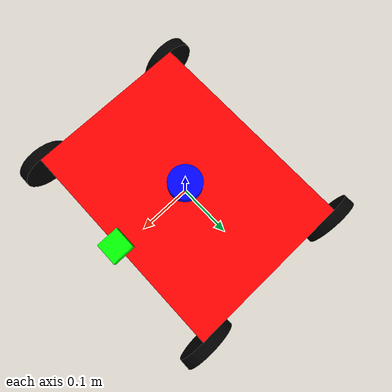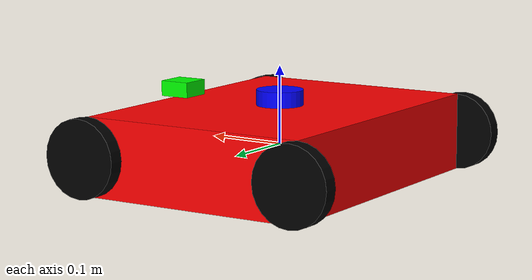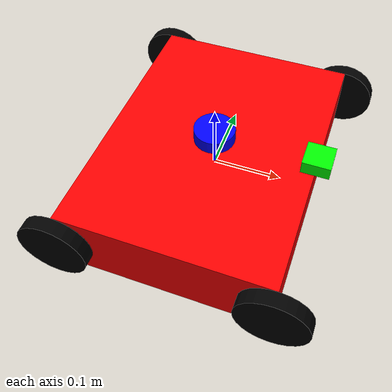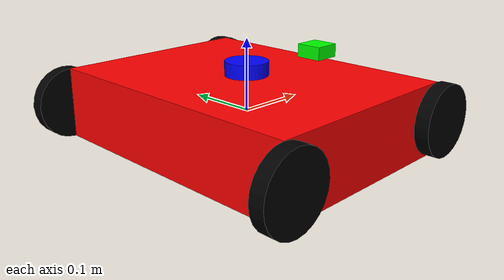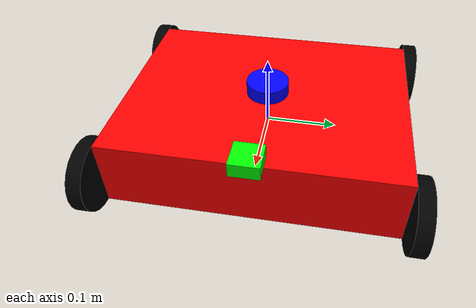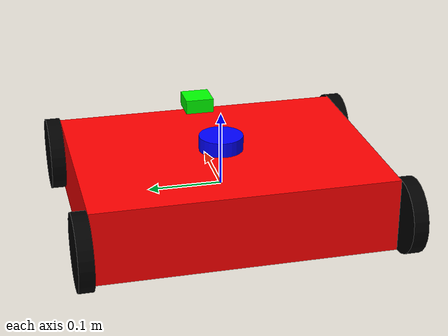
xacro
<?xml version="1.0"?>
<robot xmlns:xacro="http://ros.org/wiki/xacro" name="four_wheel_bot">
  <gazebo xmlns:gazebo="http://gazebosim.org/schema/gazebo"/>

  <!-- === Properties === -->
  <xacro:property name="wheel_radius" value="0.05"/>
  <xacro:property name="wheel_width" value="0.02"/>
  <xacro:property name="body_length" value="0.3"/>
  <xacro:property name="body_width" value="0.4"/>
  <xacro:property name="body_height" value="0.1"/>

  <!-- === Base Link === -->
  <link name="base_link">
    <visual>
      <geometry>
        <box size="${body_length} ${body_width} ${body_height}"/>
      </geometry>
      <material name="red">
        <color rgba="1 0 0 1"/>
      </material>
    </visual>
    <collision>
      <geometry>
        <box size="${body_length} ${body_width} ${body_height}"/>
      </geometry>
    </collision>
    <inertial>
      <mass value="5"/>
      <inertia ixx="0.1" ixy="0" ixz="0" iyy="0.1" iyz="0" izz="0.1"/>
    </inertial>
  </link>

  <gazebo reference="base_link">
    <material>Gazebo/Red</material>
  </gazebo>

  <!-- === Wheel Macro === -->
  <xacro:macro name="wheel" params="name x y joint_name">
    <link name="${name}">
      <visual>
        <origin rpy="1.5708 0 0"/>
        <geometry>
          <cylinder radius="${wheel_radius}" length="${wheel_width}"/>
        </geometry>
        <material name="black">
          <color rgba="0 0 0 1"/>
        </material>
      </visual>
      <collision>
        <origin rpy="1.5708 0 0"/>
        <geometry>
          <cylinder radius="${wheel_radius}" length="${wheel_width}"/>
        </geometry>
      </collision>
      <inertial>
        <mass value="0.2"/>
        <inertia ixx="0.0001" ixy="0" ixz="0" iyy="0.0001" iyz="0" izz="0.0001"/>
      </inertial>
    </link>

    <joint name="${joint_name}" type="continuous">
      <parent link="base_link"/>
      <child link="${name}"/>
      <origin xyz="${x} ${y} -${body_height / 2 - wheel_radius}" rpy="0 0 0"/>
      <axis xyz="0 1 0"/>
    </joint>

    <transmission name="${joint_name}_trans">
      <type>transmission_interface/SimpleTransmission</type>
      <actuator name="${joint_name}_motor">
        <mechanicalReduction>1</mechanicalReduction>
      </actuator>
      <joint name="${joint_name}"/>
    </transmission>
  </xacro:macro>

  <!-- === Wheels === -->
  <xacro:wheel name="wheel_fl" x="${body_length / 2}" y="${body_width / 2 + wheel_width / 2}" joint_name="joint_fl"/>
  <xacro:wheel name="wheel_fr" x="${body_length / 2}" y="-${body_width / 2 + wheel_width / 2}" joint_name="joint_fr"/>
  <xacro:wheel name="wheel_rl" x="-${body_length / 2}" y="${body_width / 2 + wheel_width / 2}" joint_name="joint_rl"/>
  <xacro:wheel name="wheel_rr" x="-${body_length / 2}" y="-${body_width / 2 + wheel_width / 2}" joint_name="joint_rr"/>

  <!-- Gazebo materials for each wheel -->
  <gazebo reference="wheel_fl">
    <material>Gazebo/Yellow</material>
  </gazebo>
  <gazebo reference="wheel_fr">
    <material>Gazebo/Yellow</material>
  </gazebo>
  <gazebo reference="wheel_rl">
    <material>Gazebo/Yellow</material>
  </gazebo>
  <gazebo reference="wheel_rr">
    <material>Gazebo/Yellow</material>
  </gazebo>

  <!-- === LIDAR Sensor === -->
  <link name="lidar_link">
    <visual>
      <origin xyz="0 0 0" rpy="0 0 0"/>
      <geometry>
        <cylinder radius="0.03" length="0.02"/>
      </geometry>
      <material name="blue">
        <color rgba="0 0 1 1"/>
      </material>
    </visual>
    <collision>
      <origin xyz="0 0 0" rpy="0 0 0"/>
      <geometry>
        <cylinder radius="0.03" length="0.02"/>
      </geometry>
    </collision>
    <inertial>
      <mass value="0.1"/>
      <inertia ixx="0.00001" ixy="0" ixz="0" iyy="0.00001" iyz="0" izz="0.00001"/>
    </inertial>
  </link>

  <joint name="lidar_joint" type="fixed">
    <parent link="base_link"/>
    <child link="lidar_link"/>
    <origin xyz="0 0 ${body_height / 2 + 0.01}" rpy="0 0 0"/>
  </joint>

  <gazebo reference="lidar_link">
    <sensor name="lidar" type="ray">
      <pose>0 0 0 0 0 0</pose>
      <update_rate>10</update_rate>
      <visualize>true</visualize>
      <ray>
        <scan>
          <horizontal>
            <samples>720</samples>
            <resolution>1</resolution>
            <min_angle>-1.57</min_angle>
            <max_angle>1.57</max_angle>
          </horizontal>
        </scan>
        <range>
          <min>0.12</min>
          <max>10.0</max>
        </range>
      </ray>
      <plugin name="gazebo_ros_laser_controller" filename="libgazebo_ros_ray_sensor.so">
        <ros>
          <remapping>~/scan:=/laser_scan</remapping>
          <remapping>~/point_cloud:=/scan_cloud</remapping>
          <output_type>laser_scan</output_type>
        </ros>
        <update_rate>10.0</update_rate>
        <frame_name>lidar_link</frame_name>
      </plugin>
    </sensor>
  </gazebo>

  <!-- === Camera Sensor === -->
  <link name="camera_link">
    <visual>
      <origin xyz="0 0 0" rpy="0 0 0"/>
      <geometry>
        <box size="0.04 0.04 0.02"/>
      </geometry>
      <material name="green">
        <color rgba="0 1 0 1"/>
      </material>
    </visual>
    <collision>
      <origin xyz="0 0 0" rpy="0 0 0"/>
      <geometry>
        <box size="0.04 0.04 0.02"/>
      </geometry>
    </collision>
    <inertial>
      <mass value="0.1"/>
      <inertia ixx="0.00001" ixy="0" ixz="0" iyy="0.00001" iyz="0" izz="0.00001"/>
    </inertial>
  </link>

  <joint name="camera_joint" type="fixed">
    <parent link="base_link"/>
    <child link="camera_link"/>
    <origin xyz="0.15 0 ${body_height / 2 + 0.01}" rpy="0 0 0"/>
  </joint>

  <gazebo reference="camera_link">
    <sensor name="camera" type="camera">
      <update_rate>30</update_rate>
      <visualize>true</visualize>
      <camera>
        <horizontal_fov>1.047</horizontal_fov>
        <image>
          <width>640</width>
          <height>480</height>
          <format>R8G8B8</format>
        </image>
        <clip>
          <near>0.1</near>
          <far>100</far>
        </clip>
      </camera>
      <plugin name="gazebo_ros_camera" filename="libgazebo_ros_camera.so">
        <camera_name>front_camera</camera_name>
        <image_topic_name>image_raw</image_topic_name>
        <camera_info_topic_name>camera_info</camera_info_topic_name>
        <frame_name>camera_link</frame_name>
      </plugin>
    </sensor>
  </gazebo>

  <!-- === Differential Drive Plugin === -->
  <gazebo>
    <plugin name="diff_drive_controller" filename="libgazebo_ros_diff_drive.so">
      <left_joint>joint_rl</left_joint>
      <right_joint>joint_rr</right_joint>
      <wheel_separation>${body_width}</wheel_separation>
      <wheel_diameter>${2 * wheel_radius}</wheel_diameter>
      <command_topic>cmd_vel</command_topic>
      <odometry_topic>odom</odometry_topic>
      <odometry_frame>odom</odometry_frame>
      <robot_base_frame>base_link</robot_base_frame>
    </plugin>
  </gazebo>

  <gazebo>
    <plugin name="static_tf_lidar" filename="libgazebo_ros_static_transform_publisher.so">
      <frame_id>base_link</frame_id>
      <child_frame_id>lidar_link</child_frame_id>
      <xyz>0 0 ${body_height / 2 + 0.01}</xyz>
      <rpy>0 0 0</rpy>
    </plugin>
  </gazebo>

</robot>
